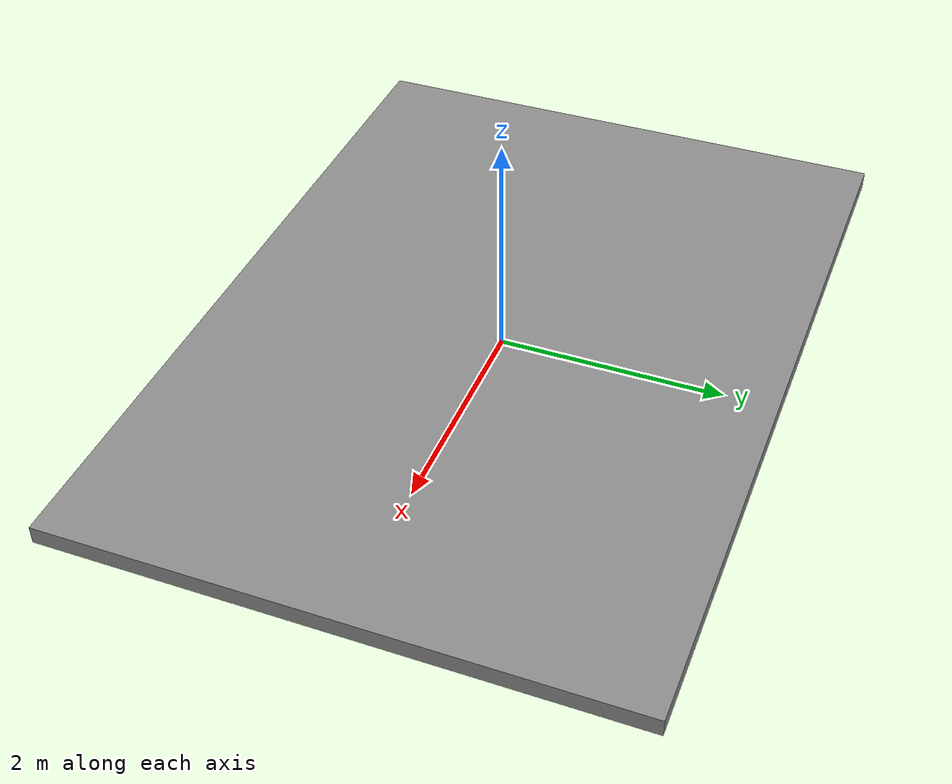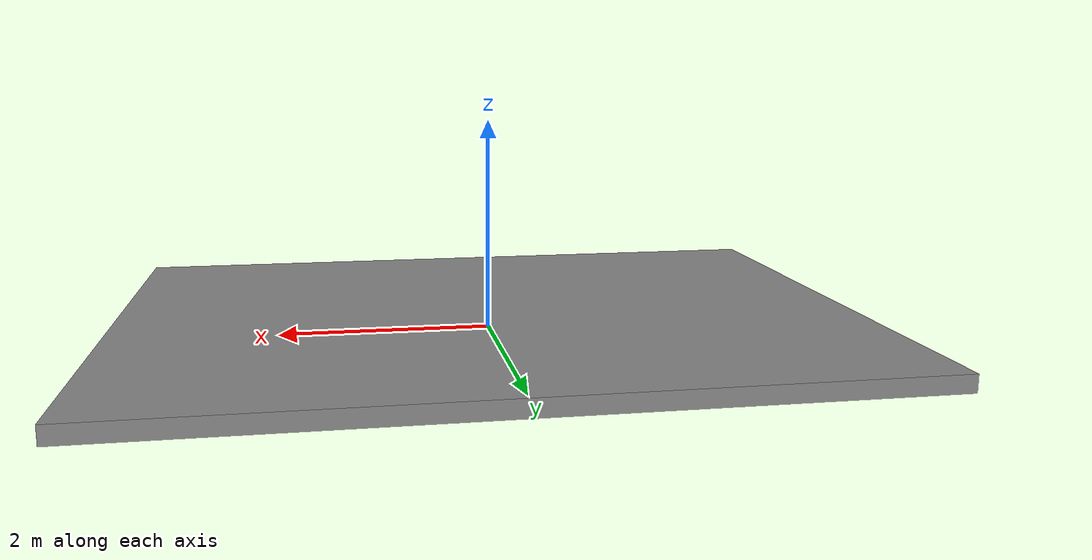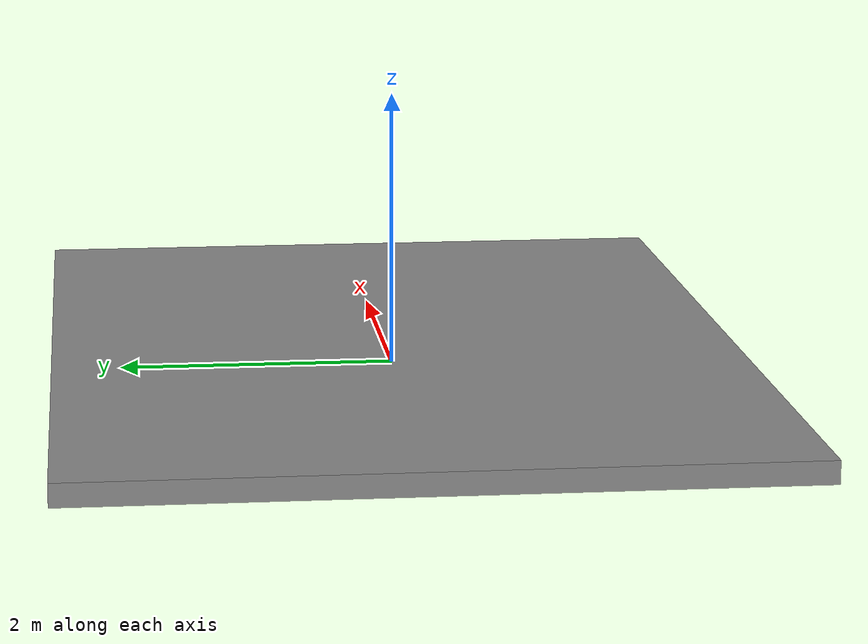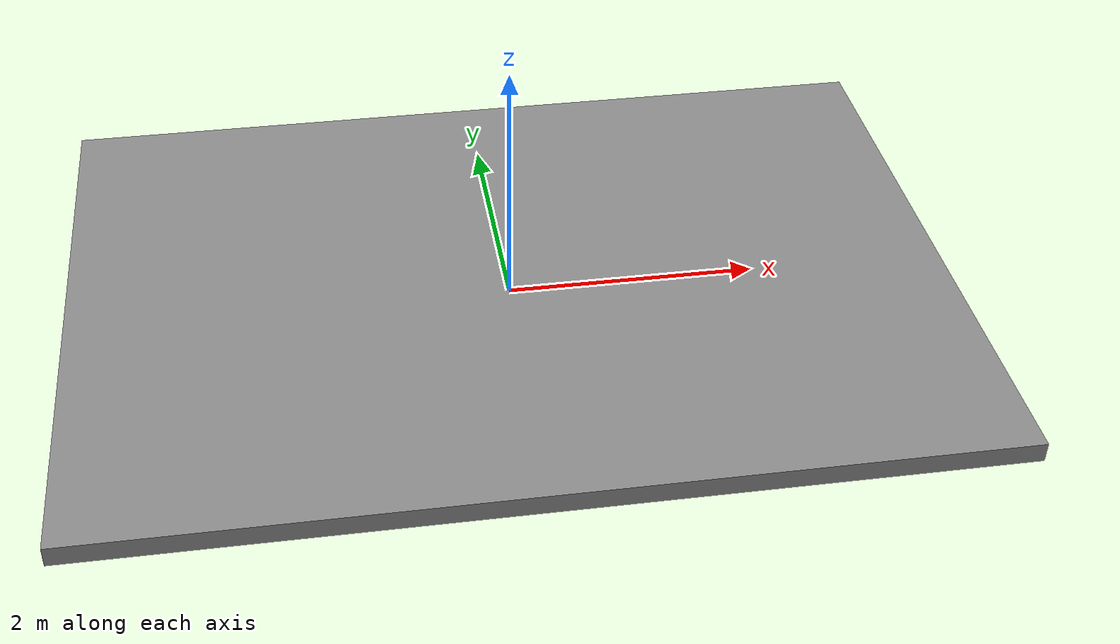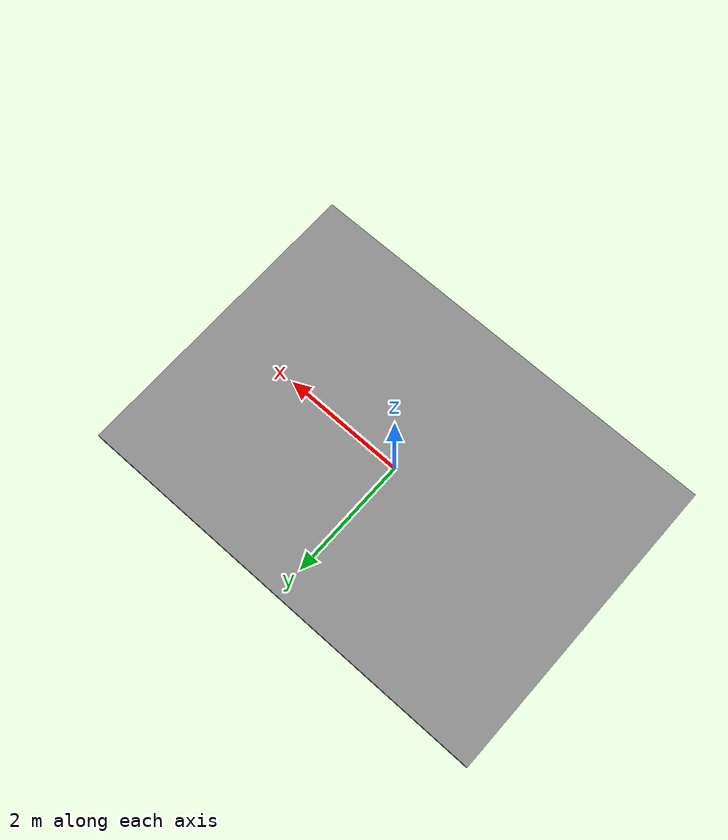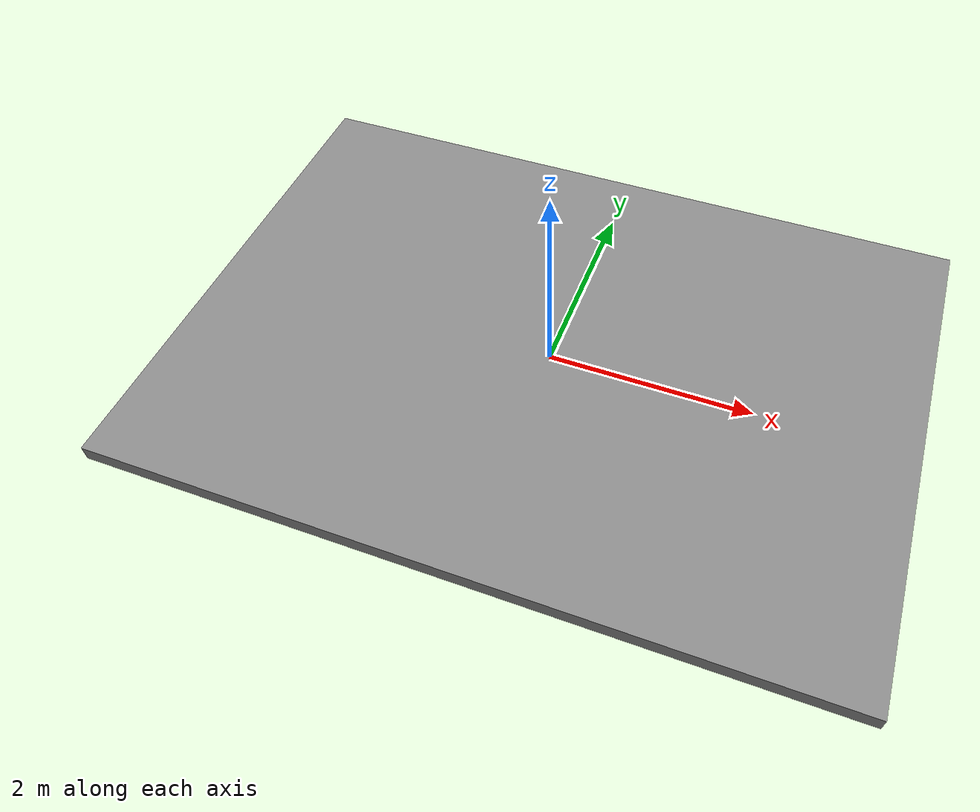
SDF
<?xml version="1.0"?>
<sdf version="1.10">
  <model name="oil_containment">
    <static>true</static>
    <link name="link">
      <visual name="berm">
        <pose>0 0 0.08 0 0 0</pose>
        <geometry>
          <box>
            <size>7 5 0.16</size>
          </box>
        </geometry>
        <material>
          <ambient>0.45 0.45 0.45 1</ambient>
          <diffuse>0.55 0.55 0.55 1</diffuse>
        </material>
      </visual>
      <visual name="inner">
        <pose>0 0 0.04 0 0 0</pose>
        <geometry>
          <box>
            <size>6.4 4.4 0.08</size>
          </box>
        </geometry>
        <material>
          <ambient>0.35 0.35 0.35 1</ambient>
          <diffuse>0.42 0.42 0.42 1</diffuse>
        </material>
      </visual>
    </link>
  </model>
</sdf>
